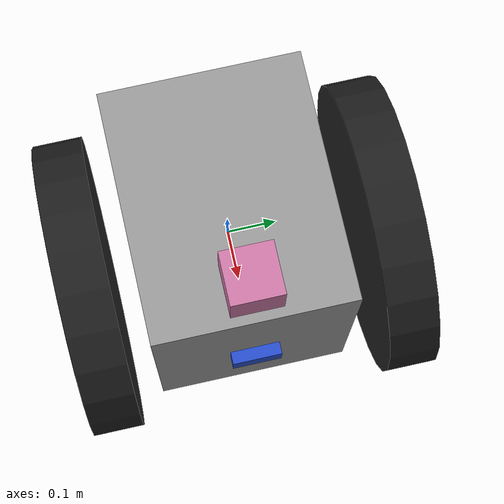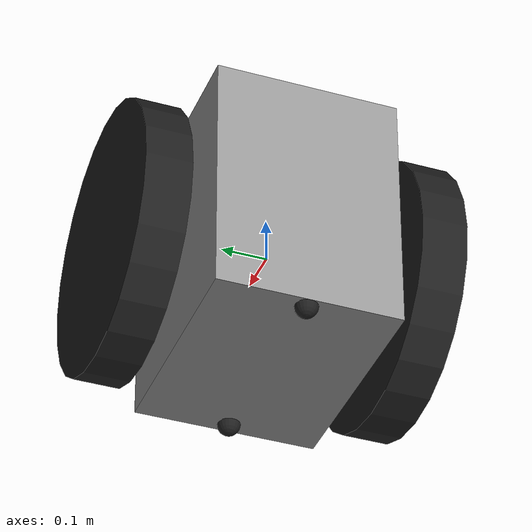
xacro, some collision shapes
<?xml version='1.0'?>

<robot name="my_robot" xmlns:xacro="http://www.ros.org/wiki/xacro">

  <link name="robot_footprint"></link>

  <joint name="robot_footprint_joint" type="fixed">
    <origin xyz="0 0 0" rpy="0 0 0" />
    <parent link="robot_footprint"/>
    <child link="chassis" />
  </joint>

  <xacro:property name="chassis_length" value=".5"/>
  <xacro:property name="chassis_width" value=".4"/>
  <xacro:property name="chassis_height" value=".55"/>
  <xacro:property name="chassis_mass" value="5.0"/>

  <xacro:property name="wheel_length" value="0.1"/>
  <xacro:property name="wheel_mass" value="1.0"/>
  <xacro:property name="wheel_radius" value="0.30"/>
  <xacro:property name="wheel_x" value="${(chassis_length / 2) - wheel_radius}"/>
  <xacro:property name="wheel_y" value="${(chassis_width / 2) + wheel_length}"/>

  <xacro:property name="caster_mass" value="5"/>
  <xacro:property name="caster_radius" value="0.025"/>
  <xacro:property name="caster_x" value="${(chassis_length / 2) - caster_radius}"/>
  <xacro:property name="caster_y" value="${-1.0 * (wheel_radius - caster_radius)}"/>

  <xacro:property name="camera_size" value="0.05 0.1 0.05"/>
  <xacro:property name="camera_x" value="${chassis_length / 2}"/>

  <xacro:property name="lidar_z" value="${0.15 + (chassis_height / 2)}"/>
  <xacro:property name="lidar_x" value="${(chassis_length / 2) - 0.05}"/>

  <xacro:property name="diff_drive_wheel_spec">
    <wheelSeparation>0.6</wheelSeparation>
    <wheelDiameter>0.6</wheelDiameter>
    <torque>30</torque>
    <wheelTorque>15</wheelTorque>
    <wheelAcceleration>0</wheelAcceleration>
  </xacro:property>

  <xacro:macro name="wheel" params="prefix x_reflect y_reflect">
    <link name='${prefix}_wheel'>
      <visual name='visual'>
        <origin xyz="0 0 0" rpy=" 0 1.5707 1.5707"/>
        <geometry>
          <cylinder radius="${wheel_radius}" length="${wheel_length}"/>
        </geometry>
      </visual>
      <collision name='collision'>
        <origin xyz="0 0 0" rpy=" 0 1.5707 1.5707"/>
        <geometry>
          <cylinder radius="${wheel_radius}" length="${wheel_length}"/>
        </geometry>
      </collision>
      <inertial>
        <mass value="${wheel_mass}"/>
        <origin xyz="0 0 0" rpy=" 0 0 0"/>
        <inertia
            ixx="0.1" ixy="0" ixz="0"
            iyy="0.1" iyz="0"
            izz="0.1"
        />
      </inertial>
    </link>
    <joint type="continuous" name="${prefix}_wheel_hinge">
      <origin xyz="${x_reflect * wheel_x} ${y_reflect * wheel_y} 0" rpy="0 0 0"/>
      <child link="${prefix}_wheel"/>
      <parent link="chassis"/>
      <axis xyz="0 1 0" rpy="0 0 0"/>
      <limit effort="10000" velocity="1000"/>
      <dynamics damping="0.0" friction="0.0"/>
    </joint>
    <gazebo reference="${prefix}_wheel">
      <material>Gazebo/Black</material>
    </gazebo>
  </xacro:macro>

  <xacro:macro name="caster" params="prefix x_reflect">
    <link name='${prefix}_caster_wheel'>
      <visual name='caster_visual'>
        <origin xyz="0 0 0" rpy=" 0 0 0"/>
        <geometry>
          <sphere radius="${caster_radius}"/>
        </geometry>
      </visual>
      <collision name='caster_collision'>
        <origin xyz="0 0 0" rpy=" 0 0 0"/>
        <geometry>
          <sphere radius="${caster_radius -0.005}"/>
        </geometry>
      </collision>
      <inertial>
        <mass value="${caster_mass}"/>
        <origin xyz="0 0 0" rpy=" 0 0 0"/>
        <inertia
            ixx="0.1" ixy="0" ixz="0"
            iyy="0.1" iyz="0"
            izz="0.1"
        />
      </inertial>
    </link>
    <joint type="fixed" name="${prefix}_caster_hinge">
      <origin xyz="${x_reflect * caster_x} 0 ${caster_y}" rpy=" 0 0 0"/>
      <child link="${prefix}_caster_wheel"/>
      <parent link="chassis"/>
    </joint>
    <gazebo reference="${prefix}_caster_wheel">
      <turnGravityOff>false</turnGravityOff>
    </gazebo>
    <gazebo reference="${prefix}_caster_wheel">
      <material>Gazebo/Black</material>
    </gazebo>

  </xacro:macro>

  <xacro:wheel prefix="left" x_reflect="-1" y_reflect="1"/>
  <xacro:wheel prefix="right" x_reflect="-1" y_reflect="-1"/>
  <xacro:caster prefix="front" x_reflect="1"/>
  <xacro:caster prefix="back" x_reflect="-1"/>

  <link name="camera">
    <visual name='camera_visual'>
      <origin xyz="0 0 0" rpy=" 0 0 0"/>
      <geometry>
        <box size="${camera_size}"/>
      </geometry>
    </visual>
    <collision name='camera_collision'>
      <origin xyz="0 0 0" rpy=" 0 0 0"/>
      <geometry>
        <box size="${camera_size}"/>
      </geometry>
    </collision>
    <inertial>
      <mass value="0.1"/>
      <origin xyz="0.0 0 0" rpy=" 0 0 0"/>
      <inertia
          ixx="1e-6" ixy="0" ixz="0"
          iyy="1e-6"   iyz="0"
          izz="1e-6"
      />
    </inertial>
  </link>
  <joint type="fixed" name="camera_joint">
    <origin xyz="${camera_x} 0 0" rpy="0 0 0"/>
    <child link="camera"/>
    <parent link="chassis"/>
    <axis xyz="0 1 0" rpy="0 0 0"/>
  </joint>
  <gazebo reference="camera">
    <material>Gazebo/Blue</material>
  </gazebo>

  <link name="hokuyo">
    <visual name='hokuyo_visual'>
      <origin xyz="0 0 0" rpy=" 0 0 0"/>
      <geometry>
        <mesh filename="package://my_robot/meshes/hokuyo.dae"/>
      </geometry>
    </visual>
    <collision name='hokuyo_collision'>
      <origin xyz="0 0 0" rpy=" 0 0 0"/>
      <geometry>
        <box size="0.1 0.1 0.1"/>
      </geometry>
    </collision>
    <inertial>
      <mass value="1e-5"/>
      <origin xyz="0.0 0 0" rpy=" 0 0 0"/>
      <inertia
          ixx="1e-6" ixy="0" ixz="0"
          iyy="1e-6"   iyz="0"
          izz="1e-6"
      />
    </inertial>
  </link>
  <joint type="fixed" name="hokuyo_joint">
    <origin xyz="${lidar_x} 0 ${lidar_z}" rpy="0 0 0"/>
    <child link="hokuyo"/>
    <parent link="chassis"/>
    <axis xyz="0 1 0" rpy="0 0 0"/>
  </joint>

  <link name='chassis'>
    <pose>0 0 0.1 0 0 0</pose>

    <inertial>
      <mass value="${chassis_mass}"/>
      <origin xyz="0.0 0 0" rpy=" 0 0 0"/>
      <inertia
          ixx="0.1" ixy="0" ixz="0"
          iyy="0.1" iyz="0"
          izz="0.1"
      />
    </inertial>

    <collision name='collision'>
      <origin xyz="0 0 0" rpy=" 0 0 0"/>
      <geometry>
        <box size="${chassis_length} ${chassis_width} ${chassis_height}"/>
      </geometry>
    </collision>

    <visual name='chassis_visual'>
      <origin xyz="0 0 0" rpy=" 0 0 0"/>
      <geometry>
        <box size="${chassis_length} ${chassis_width} ${chassis_height}"/>
      </geometry>
    </visual>
  </link>
  <gazebo reference="chassis">
    <material>Gazebo/Gray</material>
  </gazebo>

  <xacro:include filename="$(find my_robot)/urdf/my_robot.gazebo" />

</robot>
